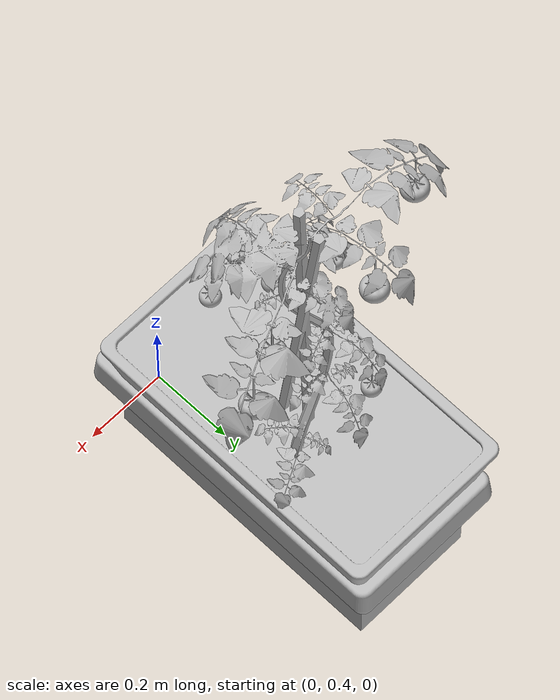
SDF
<sdf version="1.6">
 <world name="default">
  <model name="plant01">
   <static>0</static>
   <link name="tomato_plant_link">
    <inertial>
     <mass>20</mass>
     <inertia><ixx>1</ixx><ixy>0</ixy><ixz>0</ixz><iyy>1</iyy><iyz>0</iyz><izz>1</izz></inertia>
    </inertial>
    <visual name="visual">
     <geometry><mesh><uri>model://tomato_plant/meshes/tomato_plant.obj</uri></mesh></geometry>
    </visual>
    <collision name="collision">
     <pose>0 0 0.01 0 -0 0</pose>
     <geometry><cylinder><radius>0.2</radius><length>0.02</length></cylinder></geometry>
    </collision>
   </link>
   <link name="t_link_0">
    <pose>0.176111 0.046061 0.713729 0 -0 0</pose>
    <inertial>
     <mass>0.1</mass>
     <inertia><ixx>1</ixx><ixy>0</ixy><ixz>0</ixz><iyy>1</iyy><iyz>0</iyz><izz>1</izz></inertia>
    </inertial>
    <collision name="collision"><geometry><sphere><radius>0.02</radius></sphere></geometry></collision>
    <visual name="visual">
     <geometry><mesh><uri>model://green_tomato/meshes/green_tomato.obj</uri></mesh></geometry>
    </visual>
   </link>
   <joint name="t_joint_0" type="fixed">
    <parent>tomato_plant_link</parent>
    <child>t_link_0</child>
    <axis>
     <xyz>0 0 1</xyz>
     <use_parent_model_frame>1</use_parent_model_frame>
     <limit><lower>-1e+16</lower><upper>1e+16</upper></limit>
    </axis>
    <sensor name="force_torque" type="force_torque">
     <always_on>1</always_on>
     <update_rate>250</update_rate>
     <plugin name="breakable_0" filename="libBreakableJointPlugin.so">
      <breaking_force_N>20</breaking_force_N>
     </plugin>
    </sensor>
   </joint>
   <link name="t_link_1">
    <pose>0.063172 0.108629 0.685474 0 -0 0</pose>
    <inertial>
     <mass>0.1</mass>
     <inertia><ixx>1</ixx><ixy>0</ixy><ixz>0</ixz><iyy>1</iyy><iyz>0</iyz><izz>1</izz></inertia>
    </inertial>
    <collision name="collision"><geometry><sphere><radius>0.02</radius></sphere></geometry></collision>
    <visual name="visual">
     <geometry><mesh><uri>model://green_tomato/meshes/green_tomato.obj</uri></mesh></geometry>
    </visual>
   </link>
   <joint name="t_joint_1" type="fixed">
    <parent>tomato_plant_link</parent>
    <child>t_link_1</child>
    <axis>
     <xyz>0 0 1</xyz>
     <use_parent_model_frame>1</use_parent_model_frame>
     <limit><lower>-1e+16</lower><upper>1e+16</upper></limit>
    </axis>
    <sensor name="force_torque" type="force_torque">
     <always_on>1</always_on>
     <update_rate>250</update_rate>
     <plugin name="breakable_1" filename="libBreakableJointPlugin.so">
      <breaking_force_N>20</breaking_force_N>
     </plugin>
    </sensor>
   </joint>
   <link name="t_link_2">
    <pose>0.062027 -0.170581 0.614534 0 -0 0</pose>
    <inertial>
     <mass>0.1</mass>
     <inertia><ixx>1</ixx><ixy>0</ixy><ixz>0</ixz><iyy>1</iyy><iyz>0</iyz><izz>1</izz></inertia>
    </inertial>
    <collision name="collision"><geometry><sphere><radius>0.02</radius></sphere></geometry></collision>
    <visual name="visual">
     <geometry><mesh><uri>model://green_tomato/meshes/green_tomato.obj</uri></mesh></geometry>
    </visual>
   </link>
   <joint name="t_joint_2" type="fixed">
    <parent>tomato_plant_link</parent>
    <child>t_link_2</child>
    <axis>
     <xyz>0 0 1</xyz>
     <use_parent_model_frame>1</use_parent_model_frame>
     <limit><lower>-1e+16</lower><upper>1e+16</upper></limit>
    </axis>
    <sensor name="force_torque" type="force_torque">
     <always_on>1</always_on>
     <update_rate>250</update_rate>
     <plugin name="breakable_2" filename="libBreakableJointPlugin.so">
      <breaking_force_N>20</breaking_force_N>
     </plugin>
    </sensor>
   </joint>
   <link name="t_link_3">
    <pose>0.114746 0.0304 0.926457 0 -0 0</pose>
    <inertial>
     <mass>0.1</mass>
     <inertia><ixx>1</ixx><ixy>0</ixy><ixz>0</ixz><iyy>1</iyy><iyz>0</iyz><izz>1</izz></inertia>
    </inertial>
    <collision name="collision"><geometry><sphere><radius>0.02</radius></sphere></geometry></collision>
    <visual name="visual">
     <geometry><mesh><uri>model://yellow_tomato/meshes/yellow_tomato.obj</uri></mesh></geometry>
    </visual>
   </link>
   <joint name="t_joint_3" type="fixed">
    <parent>tomato_plant_link</parent>
    <child>t_link_3</child>
    <axis>
     <xyz>0 0 1</xyz>
     <use_parent_model_frame>1</use_parent_model_frame>
     <limit><lower>-1e+16</lower><upper>1e+16</upper></limit>
    </axis>
    <sensor name="force_torque" type="force_torque">
     <always_on>1</always_on>
     <update_rate>250</update_rate>
     <plugin name="breakable_3" filename="libBreakableJointPlugin.so">
      <breaking_force_N>20</breaking_force_N>
     </plugin>
    </sensor>
   </joint>
   <link name="t_link_4">
    <pose>0.003426 0.147925 0.840454 0 -0 0</pose>
    <inertial>
     <mass>0.1</mass>
     <inertia><ixx>1</ixx><ixy>0</ixy><ixz>0</ixz><iyy>1</iyy><iyz>0</iyz><izz>1</izz></inertia>
    </inertial>
    <collision name="collision"><geometry><sphere><radius>0.02</radius></sphere></geometry></collision>
    <visual name="visual">
     <geometry><mesh><uri>model://yellow_tomato/meshes/yellow_tomato.obj</uri></mesh></geometry>
    </visual>
   </link>
   <joint name="t_joint_4" type="fixed">
    <parent>tomato_plant_link</parent>
    <child>t_link_4</child>
    <axis>
     <xyz>0 0 1</xyz>
     <use_parent_model_frame>1</use_parent_model_frame>
     <limit><lower>-1e+16</lower><upper>1e+16</upper></limit>
    </axis>
    <sensor name="force_torque" type="force_torque">
     <always_on>1</always_on>
     <update_rate>250</update_rate>
     <plugin name="breakable_4" filename="libBreakableJointPlugin.so">
      <breaking_force_N>20</breaking_force_N>
     </plugin>
    </sensor>
   </joint>
   <link name="t_link_5">
    <pose>-0.12391 0.091553 0.91111 0 -0 0</pose>
    <inertial>
     <mass>0.1</mass>
     <inertia><ixx>1</ixx><ixy>0</ixy><ixz>0</ixz><iyy>1</iyy><iyz>0</iyz><izz>1</izz></inertia>
    </inertial>
    <collision name="collision"><geometry><sphere><radius>0.02</radius></sphere></geometry></collision>
    <visual name="visual">
     <geometry><mesh><uri>model://yellow_tomato/meshes/yellow_tomato.obj</uri></mesh></geometry>
    </visual>
   </link>
   <joint name="t_joint_5" type="fixed">
    <parent>tomato_plant_link</parent>
    <child>t_link_5</child>
    <axis>
     <xyz>0 0 1</xyz>
     <use_parent_model_frame>1</use_parent_model_frame>
     <limit><lower>-1e+16</lower><upper>1e+16</upper></limit>
    </axis>
    <sensor name="force_torque" type="force_torque">
     <always_on>1</always_on>
     <update_rate>250</update_rate>
     <plugin name="breakable_5" filename="libBreakableJointPlugin.so">
      <breaking_force_N>20</breaking_force_N>
     </plugin>
    </sensor>
   </joint>
   <link name="t_link_6">
    <pose>-0.23014 -0.132697 0.911579 0 -0 0</pose>
    <inertial>
     <mass>0.1</mass>
     <inertia><ixx>1</ixx><ixy>0</ixy><ixz>0</ixz><iyy>1</iyy><iyz>0</iyz><izz>1</izz></inertia>
    </inertial>
    <collision name="collision"><geometry><sphere><radius>0.03</radius></sphere></geometry></collision>
    <visual name="visual">
     <geometry><mesh><uri>model://red_tomato/meshes/red_tomato.obj</uri></mesh></geometry>
    </visual>
   </link>
   <joint name="t_joint_6" type="fixed">
    <parent>tomato_plant_link</parent>
    <child>t_link_6</child>
    <axis>
     <xyz>0 0 1</xyz>
     <use_parent_model_frame>1</use_parent_model_frame>
     <limit><lower>-1e+16</lower><upper>1e+16</upper></limit>
    </axis>
    <sensor name="force_torque" type="force_torque">
     <always_on>1</always_on>
     <update_rate>250</update_rate>
     <plugin name="breakable_6" filename="libBreakableJointPlugin.so">
      <breaking_force_N>20</breaking_force_N>
     </plugin>
    </sensor>
   </joint>
   <link name="t_link_7">
    <pose>-0.139776 -0.09326 0.950185 0 -0 0</pose>
    <inertial>
     <mass>0.1</mass>
     <inertia><ixx>1</ixx><ixy>0</ixy><ixz>0</ixz><iyy>1</iyy><iyz>0</iyz><izz>1</izz></inertia>
    </inertial>
    <collision name="collision"><geometry><sphere><radius>0.03</radius></sphere></geometry></collision>
    <visual name="visual">
     <geometry><mesh><uri>model://red_tomato/meshes/red_tomato.obj</uri></mesh></geometry>
    </visual>
   </link>
   <joint name="t_joint_7" type="fixed">
    <parent>tomato_plant_link</parent>
    <child>t_link_7</child>
    <axis>
     <xyz>0 0 1</xyz>
     <use_parent_model_frame>1</use_parent_model_frame>
     <limit><lower>-1e+16</lower><upper>1e+16</upper></limit>
    </axis>
    <sensor name="force_torque" type="force_torque">
     <always_on>1</always_on>
     <update_rate>250</update_rate>
     <plugin name="breakable_7" filename="libBreakableJointPlugin.so">
      <breaking_force_N>20</breaking_force_N>
     </plugin>
    </sensor>
   </joint>
   <link name="t_link_8">
    <pose>0.284181 -0.063758 1.01928 0 -0 0</pose>
    <inertial>
     <mass>0.1</mass>
     <inertia><ixx>1</ixx><ixy>0</ixy><ixz>0</ixz><iyy>1</iyy><iyz>0</iyz><izz>1</izz></inertia>
    </inertial>
    <collision name="collision"><geometry><sphere><radius>0.03</radius></sphere></geometry></collision>
    <visual name="visual">
     <geometry><mesh><uri>model://red_tomato/meshes/red_tomato.obj</uri></mesh></geometry>
    </visual>
   </link>
   <joint name="t_joint_8" type="fixed">
    <parent>tomato_plant_link</parent>
    <child>t_link_8</child>
    <axis>
     <xyz>0 0 1</xyz>
     <use_parent_model_frame>1</use_parent_model_frame>
     <limit><lower>-1e+16</lower><upper>1e+16</upper></limit>
    </axis>
    <sensor name="force_torque" type="force_torque">
     <always_on>1</always_on>
     <update_rate>250</update_rate>
     <plugin name="breakable_8" filename="libBreakableJointPlugin.so">
      <breaking_force_N>20</breaking_force_N>
     </plugin>
    </sensor>
   </joint>
   <link name="t_link_9">
    <pose>0.055319 -0.176349 1.06525 0 -0 0</pose>
    <inertial>
     <mass>0.1</mass>
     <inertia><ixx>1</ixx><ixy>0</ixy><ixz>0</ixz><iyy>1</iyy><iyz>0</iyz><izz>1</izz></inertia>
    </inertial>
    <collision name="collision"><geometry><sphere><radius>0.03</radius></sphere></geometry></collision>
    <visual name="visual">
     <geometry><mesh><uri>model://red_tomato/meshes/red_tomato.obj</uri></mesh></geometry>
    </visual>
   </link>
   <joint name="t_joint_9" type="fixed">
    <parent>tomato_plant_link</parent>
    <child>t_link_9</child>
    <axis>
     <xyz>0 0 1</xyz>
     <use_parent_model_frame>1</use_parent_model_frame>
     <limit><lower>-1e+16</lower><upper>1e+16</upper></limit>
    </axis>
    <sensor name="force_torque" type="force_torque">
     <always_on>1</always_on>
     <update_rate>250</update_rate>
     <plugin name="breakable_9" filename="libBreakableJointPlugin.so">
      <breaking_force_N>20</breaking_force_N>
     </plugin>
    </sensor>
   </joint>
   <pose>0.01745 0.808714 0.113676 0.001014 -0.00195 3.14004</pose>
  </model>
  <model name="trough01">
   <static>1</static>
   <link name="trough_link">
    <visual name="visual"><geometry><mesh><uri>model://trough/meshes/truf.obj</uri></mesh></geometry></visual>
    <collision name="collision">
     <geometry><mesh><uri>model://trough/meshes/truf.obj</uri></mesh></geometry>
    </collision>
   </link>
   <link name="brick">
    <pose>0 -0.2 0 0 -0 0</pose>
    <visual name="visual"><geometry><mesh><uri>model://trough/meshes/brick.obj</uri></mesh></geometry></visual>
    <collision name="collision">
     <geometry><mesh><uri>model://trough/meshes/brick.obj</uri></mesh></geometry>
    </collision>
   </link>
   <pose>0 0.8 0.29 1.57 -0 1.57</pose>
  </model>
 </world>
</sdf>
